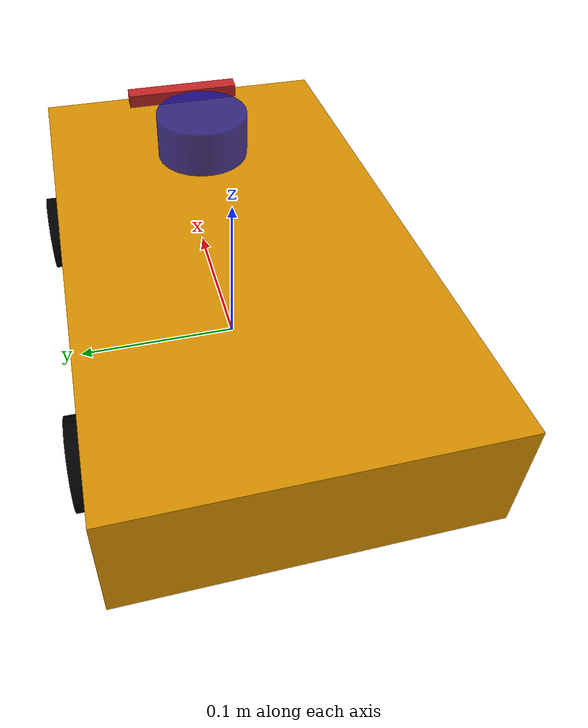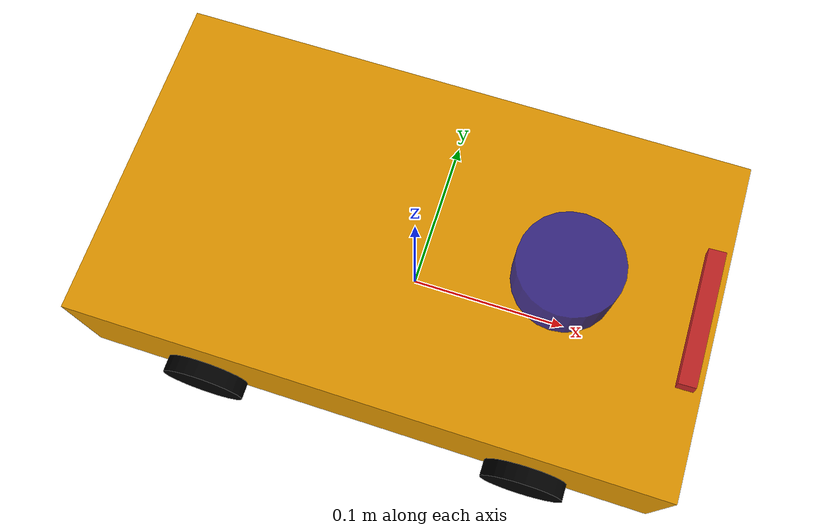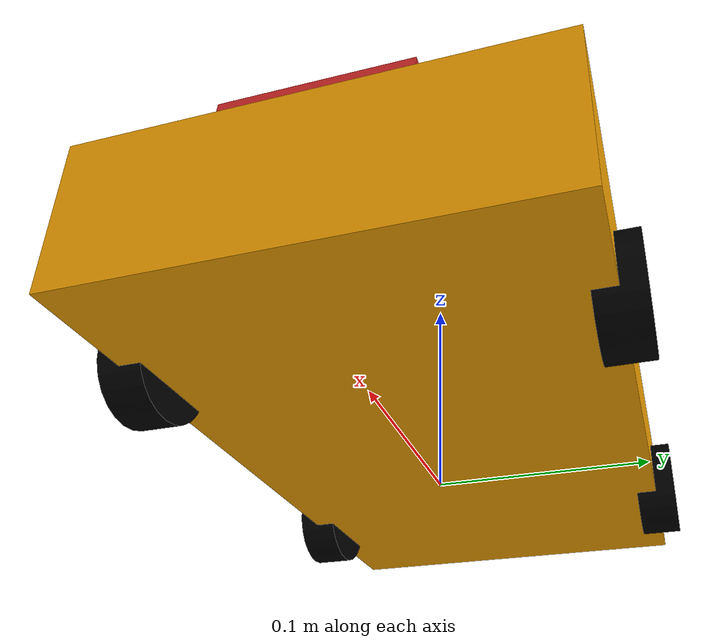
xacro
<robot xmlns:xacro="http://www.ros.org/wiki/xacro" name="car">
    <xacro:include filename="$(find robotpi_demo_robot_description)/urdf/car_base/car_base.urdf.xacro" />
    <xacro:include filename="$(find robotpi_demo_robot_description)/urdf/camera/camera.urdf.xacro" />
    <xacro:include filename="$(find robotpi_demo_robot_description)/urdf/lidar/lidar.urdf.xacro" />

</robot>

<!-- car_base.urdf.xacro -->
<robot xmlns:xacro="http://ros.org/wiki/xacro">

    <xacro:property name="PI"  value="3.1415926"/>

    <xacro:property name="car_length"  value="0.35"/>
    <xacro:property name="car_width"  value="0.2"/>
    <xacro:property name="car_height"  value="0.07"/>

    <xacro:property name="wheel_radius"  value="0.025"/>
    <xacro:property name="wheel_length"  value="0.02"/>

    <xacro:property name="wheel_joint_x" value="${car_length/3.5}"/>
    <xacro:property name="wheel_joint_y" value="${car_width / 2}"/>
    <xacro:property name="wheel_joint_z" value="${-(car_height / 2 + distance - wheel_radius)}"/>

    <xacro:property name="distance"  value="0.015"/>

    <material name="yellow">
        <color rgba="0.9 0.6 0.0 1.0"/>
    </material>
    <material name="black">
        <color rgba="0.0 0.0 0.0 1.0"/>
    </material>

    <link name="base_footprint">
        <visual>
                <geometry>
                    <sphere radius="0.001"/>
                </geometry>
        </visual>
    </link>

    <link name="base_link">
        <visual>
            <geometry>
                <box size="${car_length} ${car_width} ${car_height}"/>
            </geometry>
            <material name="yellow"/>
        </visual>
        <collision>
            <geometry>
                <box size="${car_length} ${car_width} ${car_height}"/>
            </geometry>
        </collision>
        <inertial>
            <mass value="1.0"/>
            <origin xyz="0 0 0"/>
            <inertia ixx="0.002" ixy="0.0" ixz="0.0"
                     iyy="0.002" iyz="0.0"
                     izz="0.004"/>
        </inertial>
    </link>

    <joint name="base_link_to_base_footprint" type="fixed">
        <parent link="base_footprint"/>
        <child link="base_link"/>
        <origin xyz="0.0 0.0 ${car_height/2 + distance}" rpy="0.0 0.0 0.0"/>
    </joint>

    <xacro:macro name="wheel_func" params="link_name front_flag left_flag">
        <link name="${link_name}">
            <visual>
                <geometry>
                    <cylinder radius="${wheel_radius}" length="${wheel_length}"/>
                </geometry>
                <material name="black"/>
                <origin rpy="${PI / 2} 0.0 0.0"/>
            </visual>
            <collision>
                <geometry>
                    <cylinder radius="${wheel_radius}" length="${wheel_length}"/>
                </geometry>
                <origin rpy="${PI / 2} 0.0 0.0"/>
            </collision>
            <inertial>
                <mass value="0.2"/>
                <origin xyz="0 0 0"/>
                <inertia ixx="0.0001" ixy="0.0" ixz="0.0"
                         iyy="0.0001" iyz="0.0"
                         izz="0.0002"/>
            </inertial>
        </link>
        <joint name="${link_name}_to_base_link" type="continuous">
            <parent link="base_link"/>
            <child link="${link_name}"/>
            <origin xyz="${wheel_joint_x * front_flag} ${wheel_joint_y * left_flag} ${wheel_joint_z}"/>
            <axis xyz="0.0 1.0 0.0"/>
        </joint>
    </xacro:macro>

    <xacro:wheel_func link_name="front_left" front_flag="1" left_flag="1"/>
    <xacro:wheel_func link_name="front_right" front_flag="1" left_flag="-1"/>
    <xacro:wheel_func link_name="back_left" front_flag="-1" left_flag="1"/>
    <xacro:wheel_func link_name="back_right" front_flag="-1" left_flag="-1"/>

        <!-- Plugin for wheels -->
    <gazebo>
        <plugin name="diff_drive_controller" filename="libgazebo_ros_diff_drive.so">

            <left_joint>front_left_to_base_link</left_joint>
            <right_joint>front_right_to_base_link</right_joint>

            <wheel_separation>${car_width}</wheel_separation>
            <wheel_diameter>${wheel_radius*2}</wheel_diameter>

            <command_topic>/cmd_vel</command_topic>
            <odometry_topic>/odom</odometry_topic>
            <odometry_frame>odom</odometry_frame>
            <robot_base_frame>base_link</robot_base_frame>

            <update_rate>50</update_rate>
            <publish_rate>50</publish_rate>

            <max_wheel_torque>5.0</max_wheel_torque>
        </plugin>
    </gazebo>

    <gazebo reference="base_link">
        <material>Gazebo/Yellow</material>
    </gazebo>

    <gazebo reference="front_left">
        <material>Gazebo/Black</material>
    </gazebo>
    <gazebo reference="front_right">
        <material>Gazebo/Black</material>
    </gazebo>
    <gazebo reference="back_left">
        <material>Gazebo/Black</material>
    </gazebo>
    <gazebo reference="back_right">
        <material>Gazebo/Black</material>
    </gazebo>
</robot>

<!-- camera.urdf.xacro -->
<robot xmlns:xacro="http://www.ros.org/wiki/xacro" >

    <xacro:property name="camera_x"  value="0.01"/>
    <xacro:property name="camera_y"  value="0.08"/>
    <xacro:property name="camera_z"  value="0.01"/>

    <xacro:property name="camera_joint_x"  value="${car_length / 2 - 0.01}"/>
    <xacro:property name="camera_joint_y"  value="0"/>
    <xacro:property name="camera_joint_z"  value="${car_height / 2 + camera_z / 2}"/>

    <link name="camera">
        <visual>
            <geometry>
                <box size="${camera_x} ${camera_y} ${camera_z}"/>
            </geometry>
        </visual>
        <collision>
            <geometry>
                <box size="${camera_x} ${camera_y} ${camera_z}"/>
            </geometry>
        </collision>
        <inertial>
            <mass value="0.1"/> <!-- 设定摄像头的质量 -->
            <origin xyz="0 0 0"/>
            <inertia ixx="0.000001" ixy="0.0" ixz="0.0"
                     iyy="0.000001" iyz="0.0"
                     izz="0.000002"/>
        </inertial>

    </link>
    <joint name="camera_to_base_link" type="fixed">
        <parent link="base_link"/>
        <child link="camera"/>
        <origin xyz="${camera_joint_x} ${camera_joint_y} ${camera_joint_z}" rpy="0.0 -0.1 0.0"/>
    </joint>

    <gazebo reference="camera">
        <sensor name="rgb_camera" type="camera">
            <always_on>1</always_on>
            <update_rate>30</update_rate>
            <visualize>true</visualize>
            <camera>
                <horizontal_fov>1.25</horizontal_fov>
                <image>
                    <width>320</width>
                    <height>240</height>
                    <format>R8G8B8</format>
                </image>
                <clip>
                    <near>0.1</near>
                    <far>100</far>
                </clip>
            </camera>
            <plugin name="gazebo_ros_camera" filename="libgazebo_ros_camera.so">
                <camera_name>rgb_camera</camera_name>
                <image_topic_name>/camera/image_raw</image_topic_name>
                <camera_info_topic_name>/camera/camera_info</camera_info_topic_name>
                <frame_name>camera_optical_frame</frame_name>
            </plugin>
        </sensor>
        <material>Gazebo/Red</material>
    </gazebo>

</robot>

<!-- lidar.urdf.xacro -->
<robot xmlns:xacro="http://www.ros.org/wiki/xacro">

    <xacro:property name="lidar_radius" value="0.03"/>
    <xacro:property name="lidar_length" value="0.03"/>

    <xacro:property name="lidar_joint_x" value="${car_length/4}"/>
    <xacro:property name="lidar_joint_y" value="0"/>
    <xacro:property name="lidar_joint_z" value="${car_height / 2 + lidar_length / 2}"/>

    <link name="lidar">
        <visual>
            <geometry>
                <cylinder radius="${lidar_radius}" length="${lidar_length}"/>
            </geometry>
            <material name="blue">
                <color rgba="0.1 0.1 0.7 0.8"/>
            </material>
        </visual>
        <collision>
            <geometry>
                <cylinder radius="${lidar_radius}" length="${lidar_length}"/>
            </geometry>
        </collision>
        <inertial>
            <mass value="0.5"/> <!-- 假设质量为0.2 kg，可根据实际情况调整 -->
            <origin xyz="0 0 0"/>
            <inertia ixx="0.0001" ixy="0.0" ixz="0.0"
                     iyy="0.0001" iyz="0.0"
                     izz="0.0002"/>
        </inertial>
    </link>
    <joint name="lidar_to_base_link" type="fixed">
        <parent link="base_link"/>
        <child link="lidar"/>
        <origin xyz="${lidar_joint_x} ${lidar_joint_y} ${lidar_joint_z}"/>
    </joint>

    <!-- Gazebo plugin for lidar sensor -->
    <gazebo reference="lidar">
        <sensor type="ray" name="lidar_sensor">
            <update_rate>62.0</update_rate>
            <visualize>true</visualize>
            <ray>
                <scan>
                    <horizontal>
                        <samples>640</samples>
                        <resolution>1</resolution>
                        <min_angle>-1.5708</min_angle> <!-- -90 degrees in radians -->
                        <max_angle>1.5708</max_angle>  <!-- 90 degrees in radians -->
                    </horizontal>
                </scan>
                <range>
                    <min>0.164</min>
                    <max>2.0</max>
                    <resolution>0.01</resolution>
                </range>
            </ray>
            <plugin name="gazebo_ros_ray_sensor" filename="libgazebo_ros_ray_sensor.so">
                <topicName>/lidar_scan</topicName>
            </plugin>
        </sensor>
        <material>Gazebo/Blue</material>
    </gazebo>

</robot>
